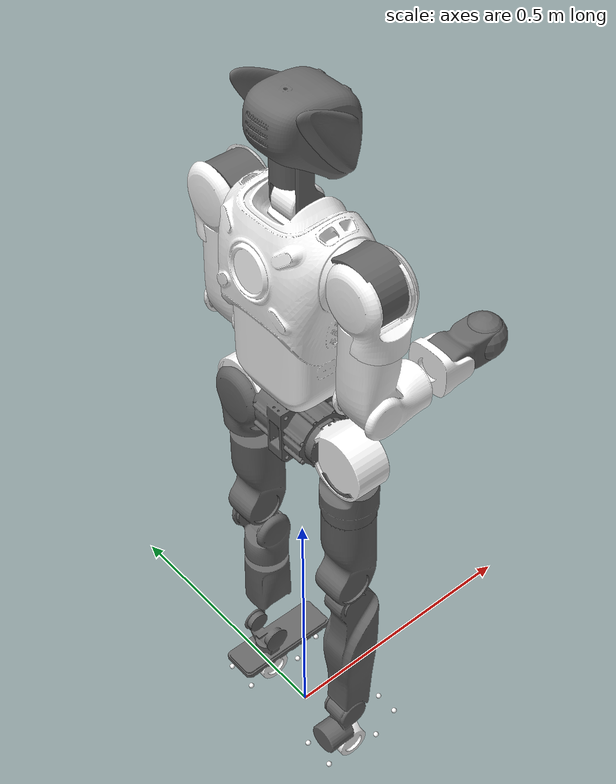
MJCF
<mujoco model="E1">
  <compiler angle="radian" meshdir="./meshes/"/>

  <asset>
    <mesh name="pelvis" file="pelvis.STL"/>
    <mesh name="left_hip_pitch_link" file="left_hip_pitch_link.STL"/>
    <mesh name="left_hip_roll_link" file="left_hip_roll_link.STL"/>
    <mesh name="left_hip_yaw_link" file="left_hip_yaw_link.STL"/>
    <mesh name="left_knee_link" file="left_knee_link.STL"/>
    <mesh name="left_ankle_pitch_link" file="left_ankle_pitch_link.STL"/>
    <mesh name="left_ankle_roll_link" file="left_ankle_roll_link.STL"/>
    <mesh name="right_hip_pitch_link" file="right_hip_pitch_link.STL"/>
    <mesh name="right_hip_roll_link" file="right_hip_roll_link.STL"/>
    <mesh name="right_hip_yaw_link" file="right_hip_yaw_link.STL"/>
    <mesh name="right_knee_link" file="right_knee_link.STL"/>
    <mesh name="right_ankle_pitch_link" file="right_ankle_pitch_link.STL"/>
    <mesh name="right_ankle_roll_link" file="right_ankle_roll_link.STL"/>
    <mesh name="torso_link" file="torso_link.STL"/>
    <mesh name="left_shoulder_pitch_link" file="left_shoulder_pitch_link.STL"/>
    <mesh name="left_shoulder_roll_link" file="left_shoulder_roll_link.STL"/>
    <mesh name="left_shoulder_yaw_link" file="left_shoulder_yaw_link.STL"/>
    <mesh name="left_elbow_link" file="left_elbow_link.STL"/>
    <mesh name="left_wrist_roll_link" file="left_wrist_roll_link.STL"/>
    <mesh name="left_wrist_pitch_link" file="left_wrist_pitch_link.STL"/>
    <mesh name="left_wrist_yaw_link" file="left_wrist_yaw_link.STL"/>
    <mesh name="right_shoulder_pitch_link" file="right_shoulder_pitch_link.STL"/>
    <mesh name="right_shoulder_roll_link" file="right_shoulder_roll_link.STL"/>
    <mesh name="right_shoulder_yaw_link" file="right_shoulder_yaw_link.STL"/>
    <mesh name="right_elbow_link" file="right_elbow_link.STL"/>
    <mesh name="right_wrist_roll_link" file="right_wrist_roll_link.STL"/>
    <mesh name="right_wrist_pitch_link" file="right_wrist_pitch_link.STL"/>
    <mesh name="right_wrist_yaw_link" file="right_wrist_yaw_link.STL"/>
    <mesh name="head_pitch_link" file="head_pitch_link.STL"/>
    <mesh name="head_yaw_link" file="head_yaw_link.STL"/>
  </asset>

  <worldbody>
    <body name="pelvis" pos="0 0 0.757">
      <inertial pos="-1.83414e-07 2.98944e-07 0.0134171" quat="0.713051 0.692756 -0.0774588 0.0751448" mass="2.73" diaginertia="0.0079738 0.00690357 0.0066126"/>
      <joint name="floating_base_joint" type="free" limited="false" actuatorfrclimited="false"/>
      <geom type="mesh" contype="0" conaffinity="0" group="1" density="0" rgba="0.4 0.4 0.4 1.0" mesh="pelvis"/>
      <site name="imu" pos="0 0 -0.06"/>
      <body name="left_hip_pitch_link" pos="0 0.0575 0">
        <inertial pos="0.00029538 0.0308444 -0.00578934" quat="0.596098 0.717966 0.34423 -0.103431" mass="0.145" diaginertia="0.000127162 0.000104737 3.89609e-05"/>
        <joint name="left_hip_pitch_joint" pos="0 0 0" axis="0 1 0" range="-1.8 1.57" actuatorfrcrange="-36 36"/>
        <geom type="mesh" contype="0" conaffinity="0" group="1" density="0" rgba="1 1 1 1" mesh="left_hip_pitch_link"/>
        <body name="left_hip_roll_link" pos="0 0.0575 -0.015">
          <inertial pos="-0.00147244 0.00041537 -0.0372145" quat="0.99892 0.00322789 0.0298082 0.035486" mass="1.39" diaginertia="0.0025721 0.00235517 0.0014478"/>
          <joint name="left_hip_roll_joint" pos="0 0 0" axis="1 0 0" range="-0.1745 1.57" actuatorfrcrange="-60 60"/>
          <geom type="mesh" contype="0" conaffinity="0" group="1" density="0" rgba="0.4 0.4 0.4 1.0" mesh="left_hip_roll_link"/>
          <body name="left_hip_yaw_link" pos="0 0 -0.098">
            <inertial pos="0.00070152 0.00025365 -0.0861466" quat="0.701604 0.0137633 0.00110639 0.712434" mass="2.32" diaginertia="0.0164698 0.0161258 0.00277234"/>
            <joint name="left_hip_yaw_joint" pos="0 0 0" axis="0 0 1" range="-1 1" actuatorfrcrange="-36 36"/>
            <geom type="mesh" contype="0" conaffinity="0" group="1" density="0" rgba="0.4 0.4 0.4 1.0" mesh="left_hip_yaw_link"/>
            <body name="left_knee_link" pos="0 0 -0.222">
              <inertial pos="0.00414084 -0.00040825 -0.133269" quat="0.718157 0.00348393 -0.00195668 0.69587" mass="0.785" diaginertia="0.0115902 0.011566 0.000323101"/>
              <joint name="left_knee_joint" pos="0 0 0" axis="0 1 0" range="0 2.4435" actuatorfrcrange="-60 60"/>
              <geom type="mesh" contype="0" conaffinity="0" group="1" density="0" rgba="0.4 0.4 0.4 1.0" mesh="left_knee_link"/>
              <body name="left_ankle_pitch_link" pos="0 0 -0.32">
                <inertial pos="-0.0142672 -0.00101925 -0.0429843" quat="0.400049 -0.225615 -0.0541715 0.886636" mass="0.597" diaginertia="0.000753146 0.000698637 0.000374587"/>
                <joint name="left_ankle_pitch_joint" pos="0 0 0" axis="0 1 0" range="-0.87 0.35" actuatorfrcrange="-36 36"/>
                <geom type="mesh" contype="0" conaffinity="0" group="1" density="0" rgba="0.4 0.4 0.4 1.0" mesh="left_ankle_pitch_link"/>
                <body name="left_ankle_roll_link" pos="0 0 -0.06">
                  <inertial pos="0.0115206 0 -0.0294706" quat="0 0.693826 0 0.720142" mass="0.294" diaginertia="0.000794803 0.00074194 0.000149907"/>
                  <joint name="left_ankle_roll_joint" pos="0 0 0" axis="1 0 0" range="-0.44 0.44" actuatorfrcrange="-14 14"/>
                  <geom type="mesh" contype="0" conaffinity="0" group="1" density="0" rgba="1 1 1 1" mesh="left_ankle_roll_link"/>
                  <geom size="0.005" pos="0.107 0.022 -0.035" rgba="1 1 1 1"/>
                  <geom size="0.005" pos="0.107 -0.022 -0.035" rgba="1 1 1 1"/>
                  <geom size="0.005" pos="0.045 0.039 -0.035" rgba="1 1 1 1"/>
                  <geom size="0.005" pos="0.045 -0.039 -0.035" rgba="1 1 1 1"/>
                  <geom size="0.005" pos="-0.064 0.03 -0.035" rgba="1 1 1 1"/>
                  <geom size="0.005" pos="-0.064 -0.03 -0.035" rgba="1 1 1 1"/>
                </body>
              </body>
            </body>
          </body>
        </body>
      </body>
      <body name="right_hip_pitch_link" pos="0 -0.0575 0">
        <inertial pos="0.00029538 -0.0308444 -0.00578934" quat="0.717966 0.596098 0.103431 -0.34423" mass="0.145" diaginertia="0.000127162 0.000104737 3.89609e-05"/>
        <joint name="right_hip_pitch_joint" pos="0 0 0" axis="0 1 0" range="-1.8 1.57" actuatorfrcrange="-36 36"/>
        <geom type="mesh" contype="0" conaffinity="0" group="1" density="0" rgba="1 1 1 1" mesh="right_hip_pitch_link"/>
        <body name="right_hip_roll_link" pos="0 -0.0575 -0.015">
          <inertial pos="-0.00147237 -0.00041532 -0.0372145" quat="0.99892 -0.00323341 0.0298083 -0.0354861" mass="1.39" diaginertia="0.00257209 0.00235517 0.0014478"/>
          <joint name="right_hip_roll_joint" pos="0 0 0" axis="1 0 0" range="-1.57 0.1745" actuatorfrcrange="-60 60"/>
          <geom type="mesh" contype="0" conaffinity="0" group="1" density="0" rgba="0.4 0.4 0.4 1.0" mesh="right_hip_roll_link"/>
          <body name="right_hip_yaw_link" pos="0 0 -0.098">
            <inertial pos="0.00070152 -0.00025365 -0.0861469" quat="0.712423 0.00110658 0.0137633 0.701614" mass="2.32" diaginertia="0.0164698 0.0161258 0.00277233"/>
            <joint name="right_hip_yaw_joint" pos="0 0 0" axis="0 0 1" range="-1 1" actuatorfrcrange="-36 36"/>
            <geom type="mesh" contype="0" conaffinity="0" group="1" density="0" rgba="0.4 0.4 0.4 1.0" mesh="right_hip_yaw_link"/>
            <body name="right_knee_link" pos="0 0 -0.222">
              <inertial pos="0.00414085 0.00040825 -0.133269" quat="0.69587 -0.00195668 0.00348393 0.718157" mass="0.785" diaginertia="0.0115902 0.011566 0.000323101"/>
              <joint name="right_knee_joint" pos="0 0 0" axis="0 1 0" range="0 2.4435" actuatorfrcrange="-60 60"/>
              <geom type="mesh" contype="0" conaffinity="0" group="1" density="0" rgba="0.4 0.4 0.4 1.0" mesh="right_knee_link"/>
              <body name="right_ankle_pitch_link" pos="0 0 -0.32">
                <inertial pos="-0.0142671 0.00101913 -0.0429843" quat="0.886618 -0.0541829 -0.225612 0.400089" mass="0.597" diaginertia="0.000753151 0.000698642 0.000374587"/>
                <joint name="right_ankle_pitch_joint" pos="0 0 0" axis="0 1 0" range="-0.87 0.35" actuatorfrcrange="-36 36"/>
                <geom type="mesh" contype="0" conaffinity="0" group="1" density="0" rgba="0.4 0.4 0.4 1.0" mesh="right_ankle_pitch_link"/>
                <body name="right_ankle_roll_link" pos="0 0 -0.06">
                  <inertial pos="0.0115206 0 -0.0294706" quat="0 0.693826 0 0.720142" mass="0.294" diaginertia="0.000794803 0.00074194 0.000149907"/>
                  <joint name="right_ankle_roll_joint" pos="0 0 0" axis="1 0 0" range="-0.44 0.44" actuatorfrcrange="-14 14"/>
                  <geom type="mesh" contype="0" conaffinity="0" group="1" density="0" rgba="1 1 1 1" mesh="right_ankle_roll_link"/>
                  <geom size="0.005" pos="0.107 0.022 -0.035" rgba="1 1 1 1"/>
                  <geom size="0.005" pos="0.107 -0.022 -0.035" rgba="1 1 1 1"/>
                  <geom size="0.005" pos="0.045 0.039 -0.035" rgba="1 1 1 1"/>
                  <geom size="0.005" pos="0.045 -0.039 -0.035" rgba="1 1 1 1"/>
                  <geom size="0.005" pos="-0.064 0.03 -0.035" rgba="1 1 1 1"/>
                  <geom size="0.005" pos="-0.064 -0.03 -0.035" rgba="1 1 1 1"/>
                </body>
              </body>
            </body>
          </body>
        </body>
      </body>
      <body name="torso_link" pos="0 0 0.111">
        <inertial pos="0.0204112 7.59318e-07 0.150046" quat="0.992713 0.00470628 -0.120395 0.00168696" mass="15.11" diaginertia="0.38305 0.255922 0.224836"/>
        <geom type="mesh" contype="0" conaffinity="0" group="1" density="0" rgba="1 1 1 1" mesh="torso_link"/>
        <geom pos="0 0.095 0.239" quat="1 0 0 0" type="mesh" contype="0" conaffinity="0" group="1" density="0" rgba="0.4 0.4 0.4 1.0" mesh="left_shoulder_pitch_link"/>
        <geom pos="0 0.15 0.239" quat="1 0 0 0" type="mesh" contype="0" conaffinity="0" group="1" density="0" rgba="1 1 1 1" mesh="left_shoulder_roll_link"/>
        <geom pos="0 0.15 0.188" quat="1 0 0 0" type="mesh" contype="0" conaffinity="0" group="1" density="0" rgba="1 1 1 1" mesh="left_shoulder_yaw_link"/>
        <geom pos="0 0.15 0.029" quat="1 0 0 0" type="mesh" contype="0" conaffinity="0" group="1" density="0" rgba="1 1 1 1" mesh="left_elbow_link"/>
        <geom pos="0.125 0.15 0.029" quat="1 0 0 0" type="mesh" contype="0" conaffinity="0" group="1" density="0" rgba="1 1 1 1" mesh="left_wrist_roll_link"/>
        <geom pos="0.16 0.15 0.029" quat="1 0 0 0" type="mesh" contype="0" conaffinity="0" group="1" density="0" rgba="0.4 0.4 0.4 1.0" mesh="left_wrist_pitch_link"/>
        <geom size="0.038" pos="0.23 0.15 0.029" rgba="0.4 0.4 0.4 1.0"/>
        <geom pos="0.23 0.15 0.029" quat="1 0 0 0" type="mesh" contype="0" conaffinity="0" group="1" density="0" rgba="1 1 1 1" mesh="left_wrist_yaw_link"/>
        <geom pos="0 -0.095 0.239" quat="1 0 0 0" type="mesh" contype="0" conaffinity="0" group="1" density="0" rgba="0.4 0.4 0.4 1.0" mesh="right_shoulder_pitch_link"/>
        <geom pos="0 -0.15 0.239" quat="1 0 0 0" type="mesh" contype="0" conaffinity="0" group="1" density="0" rgba="1 1 1 1" mesh="right_shoulder_roll_link"/>
        <geom pos="0 -0.15 0.188" quat="1 0 0 0" type="mesh" contype="0" conaffinity="0" group="1" density="0" rgba="1 1 1 1" mesh="right_shoulder_yaw_link"/>
        <geom pos="0 -0.15 0.029" quat="1 0 0 0" type="mesh" contype="0" conaffinity="0" group="1" density="0" rgba="1 1 1 1" mesh="right_elbow_link"/>
        <geom pos="0.125 -0.15 0.029" quat="1 0 0 0" type="mesh" contype="0" conaffinity="0" group="1" density="0" rgba="1 1 1 1" mesh="right_wrist_roll_link"/>
        <geom pos="0.16 -0.15 0.029" quat="1 0 0 0" type="mesh" contype="0" conaffinity="0" group="1" density="0" rgba="0.4 0.4 0.4 1.0" mesh="right_wrist_pitch_link"/>
        <geom size="0.038" pos="0.23 -0.15 0.029" rgba="0.4 0.4 0.4 1.0"/>
        <geom pos="0.23 -0.15 0.029" quat="1 0 0 0" type="mesh" contype="0" conaffinity="0" group="1" density="0" rgba="1 1 1 1" mesh="right_wrist_yaw_link"/>
        <geom pos="0 0 0.304" type="mesh" contype="0" conaffinity="0" group="1" density="0" rgba="0.41961 0.41961 0.41961 1" mesh="head_pitch_link"/>
        <geom pos="-0.01 0 0.399" quat="1 0 0 0" type="mesh" contype="0" conaffinity="0" group="1" density="0" rgba="0.41961 0.41961 0.41961 1" mesh="head_yaw_link"/>
      </body>
    </body>
  </worldbody>
  <actuator>
    <motor name="left_hip_pitch_joint"   joint="left_hip_pitch_joint"   ctrlrange="-45.0 45.0" ctrllimited="true" /> <!-- Leg Left -->
    <motor name="left_hip_roll_joint"    joint="left_hip_roll_joint"    ctrlrange="-45.0 45.0" ctrllimited="true" />
    <motor name="left_hip_yaw_joint"     joint="left_hip_yaw_joint"     ctrlrange="-30.0 30.0" ctrllimited="true" />
    <motor name="left_knee_joint"        joint="left_knee_joint"        ctrlrange="-65.0 65.0" ctrllimited="true" />
    <motor name="left_ankle_pitch_joint" joint="left_ankle_pitch_joint" ctrlrange="-24.0 24.0" ctrllimited="true" />
    <motor name="left_ankle_roll_joint"  joint="left_ankle_roll_joint"  ctrlrange="-15.0 15.0" ctrllimited="true" />

    <motor name="right_hip_pitch_joint"   joint="right_hip_pitch_joint"   ctrlrange="-45.0 45.0" ctrllimited="true" /> <!-- Right Left -->
    <motor name="right_hip_roll_joint"    joint="right_hip_roll_joint"    ctrlrange="-45.0 45.0" ctrllimited="true" />
    <motor name="right_hip_yaw_joint"     joint="right_hip_yaw_joint"     ctrlrange="-30.0 30.0" ctrllimited="true" />
    <motor name="right_knee_joint"        joint="right_knee_joint"        ctrlrange="-65.0 65.0" ctrllimited="true" />
    <motor name="right_ankle_pitch_joint" joint="right_ankle_pitch_joint" ctrlrange="-24.0 24.0" ctrllimited="true" />
    <motor name="right_ankle_roll_joint"  joint="right_ankle_roll_joint"  ctrlrange="-15.0 15.0" ctrllimited="true" />
  </actuator>
  <sensor>
    <!-- 身体的的姿态 -->
    <gyro          name="gyro"    site='imu' noise='0.005' cutoff='34.9'/>
    <accelerometer name="acc"     site='imu' noise='0.005' cutoff='157'/>
    <framequat     name='bq'      objtype='site' noise='0.001' objname='imu'/>
    <framelinvel   name="blv"  objtype='site' objname='imu'/>
  </sensor>
</mujoco>
